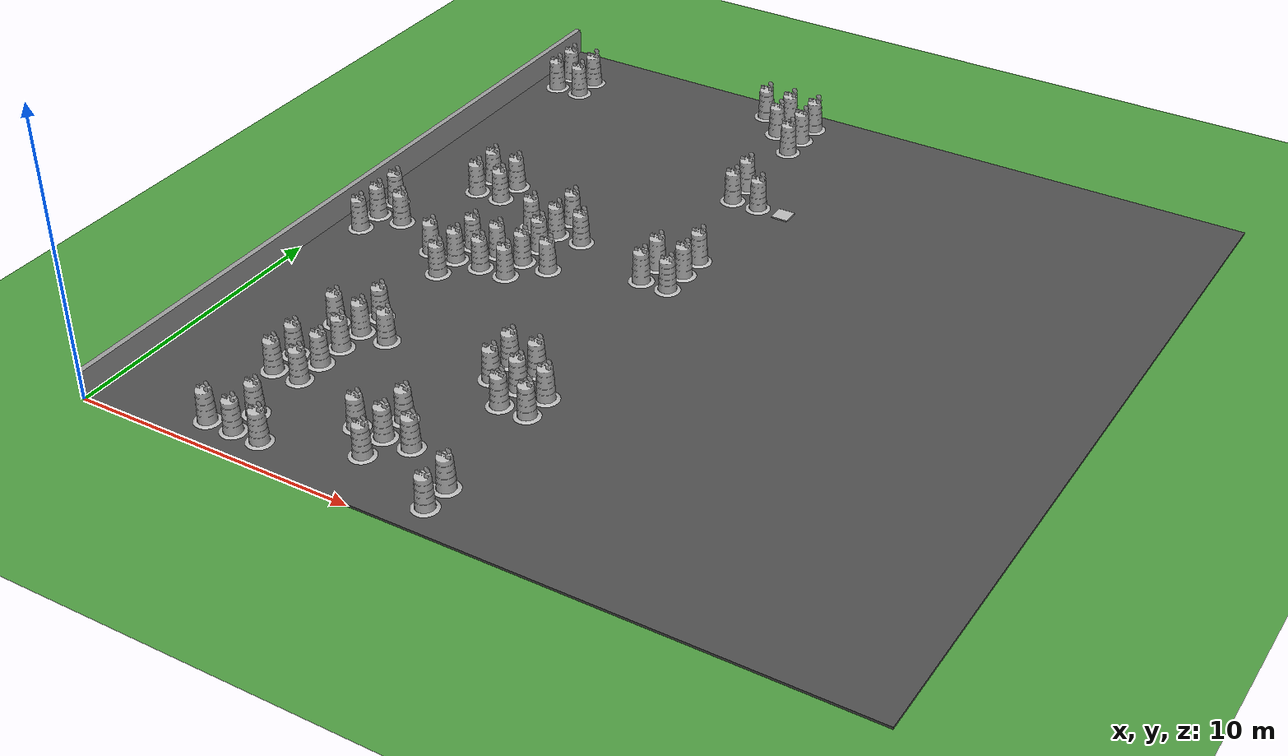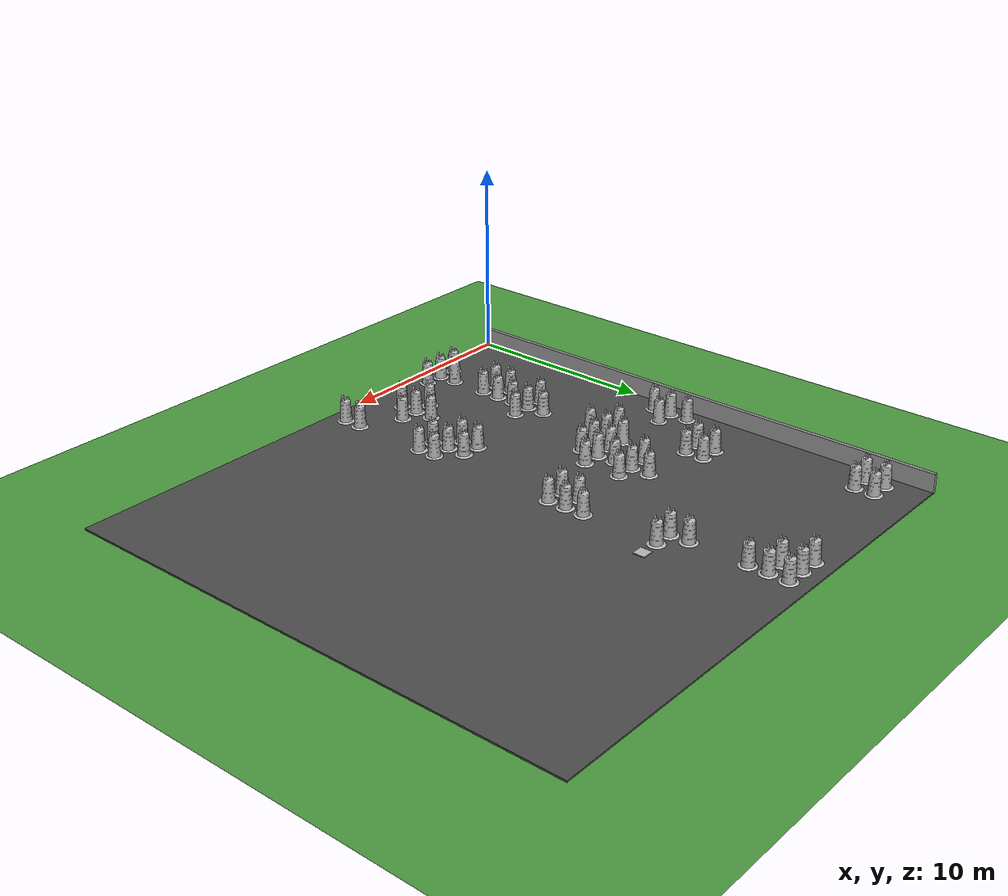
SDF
<sdf version="1.4">
 <world name="default">
  <model name="vrc_driving_terrain">
   <static>1</static>
   <link name="grass_plane">
    <visual name="visual_0">
     <cast_shadows>0</cast_shadows>
     <geometry><plane><normal>0 0 1</normal><size>150 150</size></plane></geometry>
     <material>
      <script>
       <uri>model://vrc_driving_terrain/materials/scripts</uri>
       <uri>model://vrc_driving_terrain/materials/textures</uri>
       <name>vrc/grass</name>
      </script>
     </material>
    </visual>
   </link>
   <pose>0 0 0.01 0 -0 0</pose>
  </model>
  <include><uri>model://ground_plane</uri></include>
  <include><uri>model://sun</uri></include>
  <model name="box_target_green">
   <static>1</static>
   <link name="link">
    <pose>13 20 0 0 0 0</pose>
    <collision name="collision"><geometry><box><size>6 6 2</size></box></geometry></collision>
    <visual name="visual">
     <geometry>
      <mesh><uri>model://box_target_green/meshes/mesh.dae</uri><scale>0.1 0.1 0.1</scale></mesh>
     </geometry>
    </visual>
   </link>
  </model>
  <model name="grey_wall">
   <static>1</static>
   <link name="link">
    <visual name="visual">
     <cast_shadows>0</cast_shadows>
     <geometry><box><size>27 0.2 2</size></box></geometry>
     <material>
      <script>
       <uri>model://grey_wall/materials/scripts</uri>
       <uri>model://grey_wall/materials/textures</uri>
       <name>vrc/grey_wall</name>
      </script>
     </material>
    </visual>
   </link>
   <pose>0 13.5 0 0 0 1.57079632679</pose>
  </model>
  <model name="asphalt_plane">
   <static>1</static>
   <link name="link">
    <visual name="visual">
     <cast_shadows>0</cast_shadows>
     <geometry><box><size>27 27 0.1</size></box></geometry>
     <material>
      <script>
       <uri>model://asphalt_plane/materials/scripts</uri>
       <uri>model://asphalt_plane/materials/textures</uri>
       <name>vrc/asphalt</name>
      </script>
     </material>
    </visual>
   </link>
   <pose>13.5 13.5 0 0 0 0</pose>
  </model>
  <model name="Construction Barrel">
   <link name="link">
    <collision name="collision">
     <geometry>
      <mesh><uri>model://construction_barrel/meshes/construction_barrel.dae</uri><scale>1 1 1</scale></mesh>
     </geometry>
    </collision>
    <visual name="visual">
     <geometry><mesh><uri>model://construction_barrel/meshes/construction_barrel.dae</uri></mesh></geometry>
    </visual>
   </link>
   <pose>1 12 0 0 0 0</pose>
   <static>1</static>
  </model>
  <model name="Construction Barrel">
   <link name="link">
    <collision name="collision">
     <geometry>
      <mesh><uri>model://construction_barrel/meshes/construction_barrel.dae</uri><scale>1 1 1</scale></mesh>
     </geometry>
    </collision>
    <visual name="visual">
     <geometry><mesh><uri>model://construction_barrel/meshes/construction_barrel.dae</uri></mesh></geometry>
    </visual>
   </link>
   <pose>1 13 0 0 0 0</pose>
   <static>1</static>
  </model>
  <model name="Construction Barrel">
   <link name="link">
    <collision name="collision">
     <geometry>
      <mesh><uri>model://construction_barrel/meshes/construction_barrel.dae</uri><scale>1 1 1</scale></mesh>
     </geometry>
    </collision>
    <visual name="visual">
     <geometry><mesh><uri>model://construction_barrel/meshes/construction_barrel.dae</uri></mesh></geometry>
    </visual>
   </link>
   <pose>1 14 0 0 0 0</pose>
   <static>1</static>
  </model>
  <model name="Construction Barrel">
   <link name="link">
    <collision name="collision">
     <geometry>
      <mesh><uri>model://construction_barrel/meshes/construction_barrel.dae</uri><scale>1 1 1</scale></mesh>
     </geometry>
    </collision>
    <visual name="visual">
     <geometry><mesh><uri>model://construction_barrel/meshes/construction_barrel.dae</uri></mesh></geometry>
    </visual>
   </link>
   <pose>1 24 0 0 0 0</pose>
   <static>1</static>
  </model>
  <model name="Construction Barrel">
   <link name="link">
    <collision name="collision">
     <geometry>
      <mesh><uri>model://construction_barrel/meshes/construction_barrel.dae</uri><scale>1 1 1</scale></mesh>
     </geometry>
    </collision>
    <visual name="visual">
     <geometry><mesh><uri>model://construction_barrel/meshes/construction_barrel.dae</uri></mesh></geometry>
    </visual>
   </link>
   <pose>1 25 0 0 0 0</pose>
   <static>1</static>
  </model>
  <model name="Construction Barrel">
   <link name="link">
    <collision name="collision">
     <geometry>
      <mesh><uri>model://construction_barrel/meshes/construction_barrel.dae</uri><scale>1 1 1</scale></mesh>
     </geometry>
    </collision>
    <visual name="visual">
     <geometry><mesh><uri>model://construction_barrel/meshes/construction_barrel.dae</uri></mesh></geometry>
    </visual>
   </link>
   <pose>2 13 0 0 0 0</pose>
   <static>1</static>
  </model>
  <model name="Construction Barrel">
   <link name="link">
    <collision name="collision">
     <geometry>
      <mesh><uri>model://construction_barrel/meshes/construction_barrel.dae</uri><scale>1 1 1</scale></mesh>
     </geometry>
    </collision>
    <visual name="visual">
     <geometry><mesh><uri>model://construction_barrel/meshes/construction_barrel.dae</uri></mesh></geometry>
    </visual>
   </link>
   <pose>2 24 0 0 0 0</pose>
   <static>1</static>
  </model>
  <model name="Construction Barrel">
   <link name="link">
    <collision name="collision">
     <geometry>
      <mesh><uri>model://construction_barrel/meshes/construction_barrel.dae</uri><scale>1 1 1</scale></mesh>
     </geometry>
    </collision>
    <visual name="visual">
     <geometry><mesh><uri>model://construction_barrel/meshes/construction_barrel.dae</uri></mesh></geometry>
    </visual>
   </link>
   <pose>2 25 0 0 0 0</pose>
   <static>1</static>
  </model>
  <model name="Construction Barrel">
   <link name="link">
    <collision name="collision">
     <geometry>
      <mesh><uri>model://construction_barrel/meshes/construction_barrel.dae</uri><scale>1 1 1</scale></mesh>
     </geometry>
    </collision>
    <visual name="visual">
     <geometry><mesh><uri>model://construction_barrel/meshes/construction_barrel.dae</uri></mesh></geometry>
    </visual>
   </link>
   <pose>3 16 0 0 0 0</pose>
   <static>1</static>
  </model>
  <model name="Construction Barrel">
   <link name="link">
    <collision name="collision">
     <geometry>
      <mesh><uri>model://construction_barrel/meshes/construction_barrel.dae</uri><scale>1 1 1</scale></mesh>
     </geometry>
    </collision>
    <visual name="visual">
     <geometry><mesh><uri>model://construction_barrel/meshes/construction_barrel.dae</uri></mesh></geometry>
    </visual>
   </link>
   <pose>3 17 0 0 0 0</pose>
   <static>1</static>
  </model>
  <model name="Construction Barrel">
   <link name="link">
    <collision name="collision">
     <geometry>
      <mesh><uri>model://construction_barrel/meshes/construction_barrel.dae</uri><scale>1 1 1</scale></mesh>
     </geometry>
    </collision>
    <visual name="visual">
     <geometry><mesh><uri>model://construction_barrel/meshes/construction_barrel.dae</uri></mesh></geometry>
    </visual>
   </link>
   <pose>4 1 0 0 0 0</pose>
   <static>1</static>
  </model>
  <model name="Construction Barrel">
   <link name="link">
    <collision name="collision">
     <geometry>
      <mesh><uri>model://construction_barrel/meshes/construction_barrel.dae</uri><scale>1 1 1</scale></mesh>
     </geometry>
    </collision>
    <visual name="visual">
     <geometry><mesh><uri>model://construction_barrel/meshes/construction_barrel.dae</uri></mesh></geometry>
    </visual>
   </link>
   <pose>4 4 0 0 0 0</pose>
   <static>1</static>
  </model>
  <model name="Construction Barrel">
   <link name="link">
    <collision name="collision">
     <geometry>
      <mesh><uri>model://construction_barrel/meshes/construction_barrel.dae</uri><scale>1 1 1</scale></mesh>
     </geometry>
    </collision>
    <visual name="visual">
     <geometry><mesh><uri>model://construction_barrel/meshes/construction_barrel.dae</uri></mesh></geometry>
    </visual>
   </link>
   <pose>4 5 0 0 0 0</pose>
   <static>1</static>
  </model>
  <model name="Construction Barrel">
   <link name="link">
    <collision name="collision">
     <geometry>
      <mesh><uri>model://construction_barrel/meshes/construction_barrel.dae</uri><scale>1 1 1</scale></mesh>
     </geometry>
    </collision>
    <visual name="visual">
     <geometry><mesh><uri>model://construction_barrel/meshes/construction_barrel.dae</uri></mesh></geometry>
    </visual>
   </link>
   <pose>4 7 0 0 0 0</pose>
   <static>1</static>
  </model>
  <model name="Construction Barrel">
   <link name="link">
    <collision name="collision">
     <geometry>
      <mesh><uri>model://construction_barrel/meshes/construction_barrel.dae</uri><scale>1 1 1</scale></mesh>
     </geometry>
    </collision>
    <visual name="visual">
     <geometry><mesh><uri>model://construction_barrel/meshes/construction_barrel.dae</uri></mesh></geometry>
    </visual>
   </link>
   <pose>4 12 0 0 0 0</pose>
   <static>1</static>
  </model>
  <model name="Construction Barrel">
   <link name="link">
    <collision name="collision">
     <geometry>
      <mesh><uri>model://construction_barrel/meshes/construction_barrel.dae</uri><scale>1 1 1</scale></mesh>
     </geometry>
    </collision>
    <visual name="visual">
     <geometry><mesh><uri>model://construction_barrel/meshes/construction_barrel.dae</uri></mesh></geometry>
    </visual>
   </link>
   <pose>4 16 0 0 0 0</pose>
   <static>1</static>
  </model>
  <model name="Construction Barrel">
   <link name="link">
    <collision name="collision">
     <geometry>
      <mesh><uri>model://construction_barrel/meshes/construction_barrel.dae</uri><scale>1 1 1</scale></mesh>
     </geometry>
    </collision>
    <visual name="visual">
     <geometry><mesh><uri>model://construction_barrel/meshes/construction_barrel.dae</uri></mesh></geometry>
    </visual>
   </link>
   <pose>4 17 0 0 0 0</pose>
   <static>1</static>
  </model>
  <model name="Construction Barrel">
   <link name="link">
    <collision name="collision">
     <geometry>
      <mesh><uri>model://construction_barrel/meshes/construction_barrel.dae</uri><scale>1 1 1</scale></mesh>
     </geometry>
    </collision>
    <visual name="visual">
     <geometry><mesh><uri>model://construction_barrel/meshes/construction_barrel.dae</uri></mesh></geometry>
    </visual>
   </link>
   <pose>5 1 0 0 0 0</pose>
   <static>1</static>
  </model>
  <model name="Construction Barrel">
   <link name="link">
    <collision name="collision">
     <geometry>
      <mesh><uri>model://construction_barrel/meshes/construction_barrel.dae</uri><scale>1 1 1</scale></mesh>
     </geometry>
    </collision>
    <visual name="visual">
     <geometry><mesh><uri>model://construction_barrel/meshes/construction_barrel.dae</uri></mesh></geometry>
    </visual>
   </link>
   <pose>5 2 0 0 0 0</pose>
   <static>1</static>
  </model>
  <model name="Construction Barrel">
   <link name="link">
    <collision name="collision">
     <geometry>
      <mesh><uri>model://construction_barrel/meshes/construction_barrel.dae</uri><scale>1 1 1</scale></mesh>
     </geometry>
    </collision>
    <visual name="visual">
     <geometry><mesh><uri>model://construction_barrel/meshes/construction_barrel.dae</uri></mesh></geometry>
    </visual>
   </link>
   <pose>5 4 0 0 0 0</pose>
   <static>1</static>
  </model>
  <model name="Construction Barrel">
   <link name="link">
    <collision name="collision">
     <geometry>
      <mesh><uri>model://construction_barrel/meshes/construction_barrel.dae</uri><scale>1 1 1</scale></mesh>
     </geometry>
    </collision>
    <visual name="visual">
     <geometry><mesh><uri>model://construction_barrel/meshes/construction_barrel.dae</uri></mesh></geometry>
    </visual>
   </link>
   <pose>5 5 0 0 0 0</pose>
   <static>1</static>
  </model>
  <model name="Construction Barrel">
   <link name="link">
    <collision name="collision">
     <geometry>
      <mesh><uri>model://construction_barrel/meshes/construction_barrel.dae</uri><scale>1 1 1</scale></mesh>
     </geometry>
    </collision>
    <visual name="visual">
     <geometry><mesh><uri>model://construction_barrel/meshes/construction_barrel.dae</uri></mesh></geometry>
    </visual>
   </link>
   <pose>5 6 0 0 0 0</pose>
   <static>1</static>
  </model>
  <model name="Construction Barrel">
   <link name="link">
    <collision name="collision">
     <geometry>
      <mesh><uri>model://construction_barrel/meshes/construction_barrel.dae</uri><scale>1 1 1</scale></mesh>
     </geometry>
    </collision>
    <visual name="visual">
     <geometry><mesh><uri>model://construction_barrel/meshes/construction_barrel.dae</uri></mesh></geometry>
    </visual>
   </link>
   <pose>5 7 0 0 0 0</pose>
   <static>1</static>
  </model>
  <model name="Construction Barrel">
   <link name="link">
    <collision name="collision">
     <geometry>
      <mesh><uri>model://construction_barrel/meshes/construction_barrel.dae</uri><scale>1 1 1</scale></mesh>
     </geometry>
    </collision>
    <visual name="visual">
     <geometry><mesh><uri>model://construction_barrel/meshes/construction_barrel.dae</uri></mesh></geometry>
    </visual>
   </link>
   <pose>5 8 0 0 0 0</pose>
   <static>1</static>
  </model>
  <model name="Construction Barrel">
   <link name="link">
    <collision name="collision">
     <geometry>
      <mesh><uri>model://construction_barrel/meshes/construction_barrel.dae</uri><scale>1 1 1</scale></mesh>
     </geometry>
    </collision>
    <visual name="visual">
     <geometry><mesh><uri>model://construction_barrel/meshes/construction_barrel.dae</uri></mesh></geometry>
    </visual>
   </link>
   <pose>5 11 0 0 0 0</pose>
   <static>1</static>
  </model>
  <model name="Construction Barrel">
   <link name="link">
    <collision name="collision">
     <geometry>
      <mesh><uri>model://construction_barrel/meshes/construction_barrel.dae</uri><scale>1 1 1</scale></mesh>
     </geometry>
    </collision>
    <visual name="visual">
     <geometry><mesh><uri>model://construction_barrel/meshes/construction_barrel.dae</uri></mesh></geometry>
    </visual>
   </link>
   <pose>5 12 0 0 0 0</pose>
   <static>1</static>
  </model>
  <model name="Construction Barrel">
   <link name="link">
    <collision name="collision">
     <geometry>
      <mesh><uri>model://construction_barrel/meshes/construction_barrel.dae</uri><scale>1 1 1</scale></mesh>
     </geometry>
    </collision>
    <visual name="visual">
     <geometry><mesh><uri>model://construction_barrel/meshes/construction_barrel.dae</uri></mesh></geometry>
    </visual>
   </link>
   <pose>5 13 0 0 0 0</pose>
   <static>1</static>
  </model>
  <model name="Construction Barrel">
   <link name="link">
    <collision name="collision">
     <geometry>
      <mesh><uri>model://construction_barrel/meshes/construction_barrel.dae</uri><scale>1 1 1</scale></mesh>
     </geometry>
    </collision>
    <visual name="visual">
     <geometry><mesh><uri>model://construction_barrel/meshes/construction_barrel.dae</uri></mesh></geometry>
    </visual>
   </link>
   <pose>6 1 0 0 0 0</pose>
   <static>1</static>
  </model>
  <model name="Construction Barrel">
   <link name="link">
    <collision name="collision">
     <geometry>
      <mesh><uri>model://construction_barrel/meshes/construction_barrel.dae</uri><scale>1 1 1</scale></mesh>
     </geometry>
    </collision>
    <visual name="visual">
     <geometry><mesh><uri>model://construction_barrel/meshes/construction_barrel.dae</uri></mesh></geometry>
    </visual>
   </link>
   <pose>6 7 0 0 0 0</pose>
   <static>1</static>
  </model>
  <model name="Construction Barrel">
   <link name="link">
    <collision name="collision">
     <geometry>
      <mesh><uri>model://construction_barrel/meshes/construction_barrel.dae</uri><scale>1 1 1</scale></mesh>
     </geometry>
    </collision>
    <visual name="visual">
     <geometry><mesh><uri>model://construction_barrel/meshes/construction_barrel.dae</uri></mesh></geometry>
    </visual>
   </link>
   <pose>6 12 0 0 0 0</pose>
   <static>1</static>
  </model>
  <model name="Construction Barrel">
   <link name="link">
    <collision name="collision">
     <geometry>
      <mesh><uri>model://construction_barrel/meshes/construction_barrel.dae</uri><scale>1 1 1</scale></mesh>
     </geometry>
    </collision>
    <visual name="visual">
     <geometry><mesh><uri>model://construction_barrel/meshes/construction_barrel.dae</uri></mesh></geometry>
    </visual>
   </link>
   <pose>6 13 0 0 0 0</pose>
   <static>1</static>
  </model>
  <model name="Construction Barrel">
   <link name="link">
    <collision name="collision">
     <geometry>
      <mesh><uri>model://construction_barrel/meshes/construction_barrel.dae</uri><scale>1 1 1</scale></mesh>
     </geometry>
    </collision>
    <visual name="visual">
     <geometry><mesh><uri>model://construction_barrel/meshes/construction_barrel.dae</uri></mesh></geometry>
    </visual>
   </link>
   <pose>6 15 0 0 0 0</pose>
   <static>1</static>
  </model>
  <model name="Construction Barrel">
   <link name="link">
    <collision name="collision">
     <geometry>
      <mesh><uri>model://construction_barrel/meshes/construction_barrel.dae</uri><scale>1 1 1</scale></mesh>
     </geometry>
    </collision>
    <visual name="visual">
     <geometry><mesh><uri>model://construction_barrel/meshes/construction_barrel.dae</uri></mesh></geometry>
    </visual>
   </link>
   <pose>7 12 0 0 0 0</pose>
   <static>1</static>
  </model>
  <model name="Construction Barrel">
   <link name="link">
    <collision name="collision">
     <geometry>
      <mesh><uri>model://construction_barrel/meshes/construction_barrel.dae</uri><scale>1 1 1</scale></mesh>
     </geometry>
    </collision>
    <visual name="visual">
     <geometry><mesh><uri>model://construction_barrel/meshes/construction_barrel.dae</uri></mesh></geometry>
    </visual>
   </link>
   <pose>7 13 0 0 0 0</pose>
   <static>1</static>
  </model>
  <model name="Construction Barrel">
   <link name="link">
    <collision name="collision">
     <geometry>
      <mesh><uri>model://construction_barrel/meshes/construction_barrel.dae</uri><scale>1 1 1</scale></mesh>
     </geometry>
    </collision>
    <visual name="visual">
     <geometry><mesh><uri>model://construction_barrel/meshes/construction_barrel.dae</uri></mesh></geometry>
    </visual>
   </link>
   <pose>7 14 0 0 0 0</pose>
   <static>1</static>
  </model>
  <model name="Construction Barrel">
   <link name="link">
    <collision name="collision">
     <geometry>
      <mesh><uri>model://construction_barrel/meshes/construction_barrel.dae</uri><scale>1 1 1</scale></mesh>
     </geometry>
    </collision>
    <visual name="visual">
     <geometry><mesh><uri>model://construction_barrel/meshes/construction_barrel.dae</uri></mesh></geometry>
    </visual>
   </link>
   <pose>7 15 0 0 0 0</pose>
   <static>1</static>
  </model>
  <model name="Construction Barrel">
   <link name="link">
    <collision name="collision">
     <geometry>
      <mesh><uri>model://construction_barrel/meshes/construction_barrel.dae</uri><scale>1 1 1</scale></mesh>
     </geometry>
    </collision>
    <visual name="visual">
     <geometry><mesh><uri>model://construction_barrel/meshes/construction_barrel.dae</uri></mesh></geometry>
    </visual>
   </link>
   <pose>7 16 0 0 0 0</pose>
   <static>1</static>
  </model>
  <model name="Construction Barrel">
   <link name="link">
    <collision name="collision">
     <geometry>
      <mesh><uri>model://construction_barrel/meshes/construction_barrel.dae</uri><scale>1 1 1</scale></mesh>
     </geometry>
    </collision>
    <visual name="visual">
     <geometry><mesh><uri>model://construction_barrel/meshes/construction_barrel.dae</uri></mesh></geometry>
    </visual>
   </link>
   <pose>8 3 0 0 0 0</pose>
   <static>1</static>
  </model>
  <model name="Construction Barrel">
   <link name="link">
    <collision name="collision">
     <geometry>
      <mesh><uri>model://construction_barrel/meshes/construction_barrel.dae</uri><scale>1 1 1</scale></mesh>
     </geometry>
    </collision>
    <visual name="visual">
     <geometry><mesh><uri>model://construction_barrel/meshes/construction_barrel.dae</uri></mesh></geometry>
    </visual>
   </link>
   <pose>8 13 0 0 0 0</pose>
   <static>1</static>
  </model>
  <model name="Construction Barrel">
   <link name="link">
    <collision name="collision">
     <geometry>
      <mesh><uri>model://construction_barrel/meshes/construction_barrel.dae</uri><scale>1 1 1</scale></mesh>
     </geometry>
    </collision>
    <visual name="visual">
     <geometry><mesh><uri>model://construction_barrel/meshes/construction_barrel.dae</uri></mesh></geometry>
    </visual>
   </link>
   <pose>8 15 0 0 0 0</pose>
   <static>1</static>
  </model>
  <model name="Construction Barrel">
   <link name="link">
    <collision name="collision">
     <geometry>
      <mesh><uri>model://construction_barrel/meshes/construction_barrel.dae</uri><scale>1 1 1</scale></mesh>
     </geometry>
    </collision>
    <visual name="visual">
     <geometry><mesh><uri>model://construction_barrel/meshes/construction_barrel.dae</uri></mesh></geometry>
    </visual>
   </link>
   <pose>9 2 0 0 0 0</pose>
   <static>1</static>
  </model>
  <model name="Construction Barrel">
   <link name="link">
    <collision name="collision">
     <geometry>
      <mesh><uri>model://construction_barrel/meshes/construction_barrel.dae</uri><scale>1 1 1</scale></mesh>
     </geometry>
    </collision>
    <visual name="visual">
     <geometry><mesh><uri>model://construction_barrel/meshes/construction_barrel.dae</uri></mesh></geometry>
    </visual>
   </link>
   <pose>9 3 0 0 0 0</pose>
   <static>1</static>
  </model>
  <model name="Construction Barrel">
   <link name="link">
    <collision name="collision">
     <geometry>
      <mesh><uri>model://construction_barrel/meshes/construction_barrel.dae</uri><scale>1 1 1</scale></mesh>
     </geometry>
    </collision>
    <visual name="visual">
     <geometry><mesh><uri>model://construction_barrel/meshes/construction_barrel.dae</uri></mesh></geometry>
    </visual>
   </link>
   <pose>9 4 0 0 0 0</pose>
   <static>1</static>
  </model>
  <model name="Construction Barrel">
   <link name="link">
    <collision name="collision">
     <geometry>
      <mesh><uri>model://construction_barrel/meshes/construction_barrel.dae</uri><scale>1 1 1</scale></mesh>
     </geometry>
    </collision>
    <visual name="visual">
     <geometry><mesh><uri>model://construction_barrel/meshes/construction_barrel.dae</uri></mesh></geometry>
    </visual>
   </link>
   <pose>9 26 0 0 0 0</pose>
   <static>1</static>
  </model>
  <model name="Construction Barrel">
   <link name="link">
    <collision name="collision">
     <geometry>
      <mesh><uri>model://construction_barrel/meshes/construction_barrel.dae</uri><scale>1 1 1</scale></mesh>
     </geometry>
    </collision>
    <visual name="visual">
     <geometry><mesh><uri>model://construction_barrel/meshes/construction_barrel.dae</uri></mesh></geometry>
    </visual>
   </link>
   <pose>10 3 0 0 0 0</pose>
   <static>1</static>
  </model>
  <model name="Construction Barrel">
   <link name="link">
    <collision name="collision">
     <geometry>
      <mesh><uri>model://construction_barrel/meshes/construction_barrel.dae</uri><scale>1 1 1</scale></mesh>
     </geometry>
    </collision>
    <visual name="visual">
     <geometry><mesh><uri>model://construction_barrel/meshes/construction_barrel.dae</uri></mesh></geometry>
    </visual>
   </link>
   <pose>10 7 0 0 0 0</pose>
   <static>1</static>
  </model>
  <model name="Construction Barrel">
   <link name="link">
    <collision name="collision">
     <geometry>
      <mesh><uri>model://construction_barrel/meshes/construction_barrel.dae</uri><scale>1 1 1</scale></mesh>
     </geometry>
    </collision>
    <visual name="visual">
     <geometry><mesh><uri>model://construction_barrel/meshes/construction_barrel.dae</uri></mesh></geometry>
    </visual>
   </link>
   <pose>10 8 0 0 0 0</pose>
   <static>1</static>
  </model>
  <model name="Construction Barrel">
   <link name="link">
    <collision name="collision">
     <geometry>
      <mesh><uri>model://construction_barrel/meshes/construction_barrel.dae</uri><scale>1 1 1</scale></mesh>
     </geometry>
    </collision>
    <visual name="visual">
     <geometry><mesh><uri>model://construction_barrel/meshes/construction_barrel.dae</uri></mesh></geometry>
    </visual>
   </link>
   <pose>10 25 0 0 0 0</pose>
   <static>1</static>
  </model>
  <model name="Construction Barrel">
   <link name="link">
    <collision name="collision">
     <geometry>
      <mesh><uri>model://construction_barrel/meshes/construction_barrel.dae</uri><scale>1 1 1</scale></mesh>
     </geometry>
    </collision>
    <visual name="visual">
     <geometry><mesh><uri>model://construction_barrel/meshes/construction_barrel.dae</uri></mesh></geometry>
    </visual>
   </link>
   <pose>10 26 0 0 0 0</pose>
   <static>1</static>
  </model>
  <model name="Construction Barrel">
   <link name="link">
    <collision name="collision">
     <geometry>
      <mesh><uri>model://construction_barrel/meshes/construction_barrel.dae</uri><scale>1 1 1</scale></mesh>
     </geometry>
    </collision>
    <visual name="visual">
     <geometry><mesh><uri>model://construction_barrel/meshes/construction_barrel.dae</uri></mesh></geometry>
    </visual>
   </link>
   <pose>11 6 0 0 0 0</pose>
   <static>1</static>
  </model>
  <model name="Construction Barrel">
   <link name="link">
    <collision name="collision">
     <geometry>
      <mesh><uri>model://construction_barrel/meshes/construction_barrel.dae</uri><scale>1 1 1</scale></mesh>
     </geometry>
    </collision>
    <visual name="visual">
     <geometry><mesh><uri>model://construction_barrel/meshes/construction_barrel.dae</uri></mesh></geometry>
    </visual>
   </link>
   <pose>11 7 0 0 0 0</pose>
   <static>1</static>
  </model>
  <model name="Construction Barrel">
   <link name="link">
    <collision name="collision">
     <geometry>
      <mesh><uri>model://construction_barrel/meshes/construction_barrel.dae</uri><scale>1 1 1</scale></mesh>
     </geometry>
    </collision>
    <visual name="visual">
     <geometry><mesh><uri>model://construction_barrel/meshes/construction_barrel.dae</uri></mesh></geometry>
    </visual>
   </link>
   <pose>11 8 0 0 0 0</pose>
   <static>1</static>
  </model>
  <model name="Construction Barrel">
   <link name="link">
    <collision name="collision">
     <geometry>
      <mesh><uri>model://construction_barrel/meshes/construction_barrel.dae</uri><scale>1 1 1</scale></mesh>
     </geometry>
    </collision>
    <visual name="visual">
     <geometry><mesh><uri>model://construction_barrel/meshes/construction_barrel.dae</uri></mesh></geometry>
    </visual>
   </link>
   <pose>11 14 0 0 0 0</pose>
   <static>1</static>
  </model>
  <model name="Construction Barrel">
   <link name="link">
    <collision name="collision">
     <geometry>
      <mesh><uri>model://construction_barrel/meshes/construction_barrel.dae</uri><scale>1 1 1</scale></mesh>
     </geometry>
    </collision>
    <visual name="visual">
     <geometry><mesh><uri>model://construction_barrel/meshes/construction_barrel.dae</uri></mesh></geometry>
    </visual>
   </link>
   <pose>11 15 0 0 0 0</pose>
   <static>1</static>
  </model>
  <model name="Construction Barrel">
   <link name="link">
    <collision name="collision">
     <geometry>
      <mesh><uri>model://construction_barrel/meshes/construction_barrel.dae</uri><scale>1 1 1</scale></mesh>
     </geometry>
    </collision>
    <visual name="visual">
     <geometry><mesh><uri>model://construction_barrel/meshes/construction_barrel.dae</uri></mesh></geometry>
    </visual>
   </link>
   <pose>11 20 0 0 0 0</pose>
   <static>1</static>
  </model>
  <model name="Construction Barrel">
   <link name="link">
    <collision name="collision">
     <geometry>
      <mesh><uri>model://construction_barrel/meshes/construction_barrel.dae</uri><scale>1 1 1</scale></mesh>
     </geometry>
    </collision>
    <visual name="visual">
     <geometry><mesh><uri>model://construction_barrel/meshes/construction_barrel.dae</uri></mesh></geometry>
    </visual>
   </link>
   <pose>11 21 0 0 0 0</pose>
   <static>1</static>
  </model>
  <model name="Construction Barrel">
   <link name="link">
    <collision name="collision">
     <geometry>
      <mesh><uri>model://construction_barrel/meshes/construction_barrel.dae</uri><scale>1 1 1</scale></mesh>
     </geometry>
    </collision>
    <visual name="visual">
     <geometry><mesh><uri>model://construction_barrel/meshes/construction_barrel.dae</uri></mesh></geometry>
    </visual>
   </link>
   <pose>11 24 0 0 0 0</pose>
   <static>1</static>
  </model>
  <model name="Construction Barrel">
   <link name="link">
    <collision name="collision">
     <geometry>
      <mesh><uri>model://construction_barrel/meshes/construction_barrel.dae</uri><scale>1 1 1</scale></mesh>
     </geometry>
    </collision>
    <visual name="visual">
     <geometry><mesh><uri>model://construction_barrel/meshes/construction_barrel.dae</uri></mesh></geometry>
    </visual>
   </link>
   <pose>11 25 0 0 0 0</pose>
   <static>1</static>
  </model>
  <model name="Construction Barrel">
   <link name="link">
    <collision name="collision">
     <geometry>
      <mesh><uri>model://construction_barrel/meshes/construction_barrel.dae</uri><scale>1 1 1</scale></mesh>
     </geometry>
    </collision>
    <visual name="visual">
     <geometry><mesh><uri>model://construction_barrel/meshes/construction_barrel.dae</uri></mesh></geometry>
    </visual>
   </link>
   <pose>11 26 0 0 0 0</pose>
   <static>1</static>
  </model>
  <model name="Construction Barrel">
   <link name="link">
    <collision name="collision">
     <geometry>
      <mesh><uri>model://construction_barrel/meshes/construction_barrel.dae</uri><scale>1 1 1</scale></mesh>
     </geometry>
    </collision>
    <visual name="visual">
     <geometry><mesh><uri>model://construction_barrel/meshes/construction_barrel.dae</uri></mesh></geometry>
    </visual>
   </link>
   <pose>12 1 0 0 0 0</pose>
   <static>1</static>
  </model>
  <model name="Construction Barrel">
   <link name="link">
    <collision name="collision">
     <geometry>
      <mesh><uri>model://construction_barrel/meshes/construction_barrel.dae</uri><scale>1 1 1</scale></mesh>
     </geometry>
    </collision>
    <visual name="visual">
     <geometry><mesh><uri>model://construction_barrel/meshes/construction_barrel.dae</uri></mesh></geometry>
    </visual>
   </link>
   <pose>12 2 0 0 0 0</pose>
   <static>1</static>
  </model>
  <model name="Construction Barrel">
   <link name="link">
    <collision name="collision">
     <geometry>
      <mesh><uri>model://construction_barrel/meshes/construction_barrel.dae</uri><scale>1 1 1</scale></mesh>
     </geometry>
    </collision>
    <visual name="visual">
     <geometry><mesh><uri>model://construction_barrel/meshes/construction_barrel.dae</uri></mesh></geometry>
    </visual>
   </link>
   <pose>12 6 0 0 0 0</pose>
   <static>1</static>
  </model>
  <model name="Construction Barrel">
   <link name="link">
    <collision name="collision">
     <geometry>
      <mesh><uri>model://construction_barrel/meshes/construction_barrel.dae</uri><scale>1 1 1</scale></mesh>
     </geometry>
    </collision>
    <visual name="visual">
     <geometry><mesh><uri>model://construction_barrel/meshes/construction_barrel.dae</uri></mesh></geometry>
    </visual>
   </link>
   <pose>12 7 0 0 0 0</pose>
   <static>1</static>
  </model>
  <model name="Construction Barrel">
   <link name="link">
    <collision name="collision">
     <geometry>
      <mesh><uri>model://construction_barrel/meshes/construction_barrel.dae</uri><scale>1 1 1</scale></mesh>
     </geometry>
    </collision>
    <visual name="visual">
     <geometry><mesh><uri>model://construction_barrel/meshes/construction_barrel.dae</uri></mesh></geometry>
    </visual>
   </link>
   <pose>12 14 0 0 0 0</pose>
   <static>1</static>
  </model>
  <model name="Construction Barrel">
   <link name="link">
    <collision name="collision">
     <geometry>
      <mesh><uri>model://construction_barrel/meshes/construction_barrel.dae</uri><scale>1 1 1</scale></mesh>
     </geometry>
    </collision>
    <visual name="visual">
     <geometry><mesh><uri>model://construction_barrel/meshes/construction_barrel.dae</uri></mesh></geometry>
    </visual>
   </link>
   <pose>12 15 0 0 0 0</pose>
   <static>1</static>
  </model>
  <model name="Construction Barrel">
   <link name="link">
    <collision name="collision">
     <geometry>
      <mesh><uri>model://construction_barrel/meshes/construction_barrel.dae</uri><scale>1 1 1</scale></mesh>
     </geometry>
    </collision>
    <visual name="visual">
     <geometry><mesh><uri>model://construction_barrel/meshes/construction_barrel.dae</uri></mesh></geometry>
    </visual>
   </link>
   <pose>12 16 0 0 0 0</pose>
   <static>1</static>
  </model>
  <model name="Construction Barrel">
   <link name="link">
    <collision name="collision">
     <geometry>
      <mesh><uri>model://construction_barrel/meshes/construction_barrel.dae</uri><scale>1 1 1</scale></mesh>
     </geometry>
    </collision>
    <visual name="visual">
     <geometry><mesh><uri>model://construction_barrel/meshes/construction_barrel.dae</uri></mesh></geometry>
    </visual>
   </link>
   <pose>12 20 0 0 0 0</pose>
   <static>1</static>
  </model>
 </world>
</sdf>
